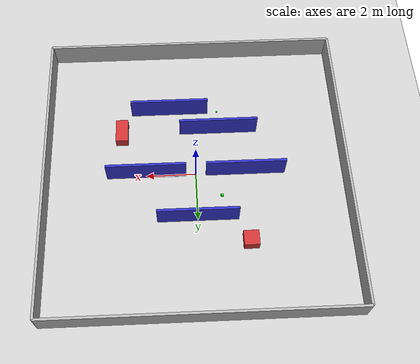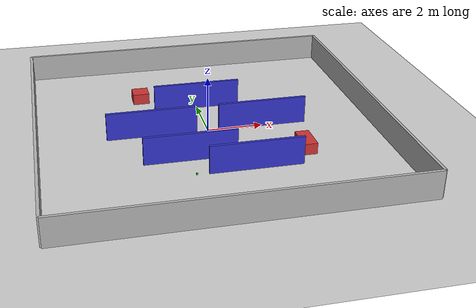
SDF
<?xml version="1.0" ?>
<sdf version="1.8">
  <world name="complex_room">

    <physics name="1ms" type="ignored">
      <max_step_size>0.001</max_step_size>
      <real_time_factor>1.0</real_time_factor>
    </physics>

    <plugin filename="libignition-gazebo-physics-system.so"
            name="ignition::gazebo::systems::Physics"/>
    <plugin filename="libignition-gazebo-user-commands-system.so"
            name="ignition::gazebo::systems::UserCommands"/>
    <plugin filename="libignition-gazebo-scene-broadcaster-system.so"
            name="ignition::gazebo::systems::SceneBroadcaster"/>

    <scene>
      <ambient>0.8 0.8 0.8 1.0</ambient> <background>1.0 1.0 1.0 1.0</background> <shadows>true</shadows> <grid>true</grid>
    </scene>

    <light type="directional" name="sun">
      <pose>0 0 10 0 0 0</pose>
      <cast_shadows>true</cast_shadows>
      <diffuse>1.0 1.0 1.0 1</diffuse> <specular>0.5 0.5 0.5 1</specular> <attenuation>
        <range>1000</range>
        <constant>0.9</constant>
        <linear>0.01</linear>
        <quadratic>0.001</quadratic>
      </attenuation>
      <direction>-0.5 0.2 -0.9</direction>
    </light>

    <model name="ground_plane">
      <static>true</static>
      <link name="link">
        <collision name="collision">
          <geometry>
            <plane>
              <normal>0 0 1</normal>
              <size>50 50</size>
            </plane>
          </geometry>
          <surface>
            <friction>
              <ode>
                <mu>100</mu>
                <mu2>50</mu2>
              </ode>
            </friction>
          </surface>
        </collision>
        <visual name="visual">
          <geometry>
            <plane>
              <normal>0 0 1</normal>
              <size>50 50</size>
            </plane>
          </geometry>
          <material>
            <ambient>0.8 0.8 0.8 1</ambient>
            <diffuse>0.8 0.8 0.8 1</diffuse>
            <specular>0.8 0.8 0.8 1</specular>
          </material>
        </visual>
      </link>
    </model>

    <model name="wall_north">
      <static>true</static>
      <pose>0 6 0.5 0 0 0</pose>
      <link name="link">
        <collision name="collision"><geometry><box><size>12 0.1 1</size></box></geometry></collision>
        <visual name="visual"><geometry><box><size>12 0.1 1</size></box></geometry>
          <material><ambient>0.3 0.3 0.3 1</ambient><diffuse>0.7 0.7 0.7 1</diffuse></material>
        </visual>
      </link>
    </model>

    <model name="wall_south">
      <static>true</static>
      <pose>0 -6 0.5 0 0 0</pose>
      <link name="link">
        <collision name="collision"><geometry><box><size>12 0.1 1</size></box></geometry></collision>
        <visual name="visual"><geometry><box><size>12 0.1 1</size></box></geometry>
          <material><ambient>0.3 0.3 0.3 1</ambient><diffuse>0.7 0.7 0.7 1</diffuse></material>
        </visual>
      </link>
    </model>

    <model name="wall_east">
      <static>true</static>
      <pose>6 0 0.5 0 0 0</pose>
      <link name="link">
        <collision name="collision"><geometry><box><size>0.1 12 1</size></box></geometry></collision>
        <visual name="visual"><geometry><box><size>0.1 12 1</size></box></geometry>
          <material><ambient>0.3 0.3 0.3 1</ambient><diffuse>0.7 0.7 0.7 1</diffuse></material>
        </visual>
      </link>
    </model>

    <model name="wall_west">
      <static>true</static>
      <pose>-6 0 0.5 0 0 0</pose>
      <link name="link">
        <collision name="collision"><geometry><box><size>0.1 12 1</size></box></geometry></collision>
        <visual name="visual"><geometry><box><size>0.1 12 1</size></box></geometry>
          <material><ambient>0.3 0.3 0.3 1</ambient><diffuse>0.7 0.7 0.7 1</diffuse></material>
        </visual>
      </link>
    </model>

    <model name="inner_wall_left">
      <static>true</static>
      <pose>-2 0 0.5 0 0 0</pose>
      <link name="link">
        <collision name="collision"><geometry><box><size>3.2 0.1 1</size></box></geometry></collision>
        <visual name="visual"><geometry><box><size>3.2 0.1 1</size></box></geometry>
          <material><ambient>0.2 0.2 0.8 1</ambient><diffuse>0.2 0.2 0.8 1</diffuse></material> </visual>
      </link>
    </model>

    <model name="inner_wall_right">
      <static>true</static>
      <pose>2 0 0.5 0 0 0</pose>
      <link name="link">
        <collision name="collision"><geometry><box><size>3.2 0.1 1</size></box></geometry></collision>
        <visual name="visual"><geometry><box><size>3.2 0.1 1</size></box></geometry>
          <material><ambient>0.2 0.2 0.8 1</ambient><diffuse>0.2 0.2 0.8 1</diffuse></material>
        </visual>
      </link>
    </model>

    <model name="inner_wall_up">
      <static>true</static>
      <pose>0 2 0.5 0 0 0</pose>
      <link name="link">
        <collision name="collision"><geometry><box><size>3.2 0.1 1</size></box></geometry></collision>
        <visual name="visual"><geometry><box><size>3.2 0.1 1</size></box></geometry>
          <material><ambient>0.2 0.2 0.8 1</ambient><diffuse>0.2 0.2 0.8 1</diffuse></material>
        </visual>
      </link>
    </model>

    <model name="inner_wall_down1">
      <static>true</static>
      <pose>1 -3 0.5 0 0 0</pose>
      <link name="link">
        <collision name="collision"><geometry><box><size>3.2 0.1 1</size></box></geometry></collision>
        <visual name="visual"><geometry><box><size>3.2 0.1 1</size></box></geometry>
          <material><ambient>0.2 0.2 0.8 1</ambient><diffuse>0.2 0.2 0.8 1</diffuse></material>
        </visual>
      </link>
    </model>

    <model name="inner_wall_down2">
      <static>true</static>
      <pose>-1 -2 0.5 0 0 0</pose>
      <link name="link">
        <collision name="collision"><geometry><box><size>3.2 0.1 1</size></box></geometry></collision>
        <visual name="visual"><geometry><box><size>3.2 0.1 1</size></box></geometry>
          <material><ambient>0.2 0.2 0.8 1</ambient><diffuse>0.2 0.2 0.8 1</diffuse></material>
        </visual>
      </link>
    </model>

    <model name="obstacle_1">
      <static>true</static>
      <pose>-2 3 0.2 0 0 0</pose>
      <link name="link">
        <collision name="collision"><geometry><box><size>0.6 0.6 0.4</size></box></geometry></collision>
        <visual name="visual"><geometry><box><size>0.6 0.6 0.4</size></box></geometry>
          <material><ambient>0.8 0.2 0.2 1</ambient><diffuse>0.8 0.2 0.2 1</diffuse></material> </visual>
      </link>
    </model>

    <model name="obstacle_2">
      <static>true</static>
      <pose>3 -2 0.2 0 0 0</pose>
      <link name="link">
        <collision name="collision"><geometry><box><size>0.5 1.0 0.4</size></box></geometry></collision>
        <visual name="visual"><geometry><box><size>0.5 1.0 0.4</size></box></geometry>
          <material><ambient>0.8 0.2 0.2 1</ambient><diffuse>0.8 0.2 0.2 1</diffuse></material>
        </visual>
      </link>
    </model>

    <model name="cube_5cm">
      <static>false</static>
      <pose>-1 -3 0.025 0 0 0</pose>
      <link name="link">
        <inertial><mass>0.05</mass><inertia><ixx>0.00002</ixx><iyy>0.00002</iyy><izz>0.00002</izz></inertia></inertial>
        <collision name="collision"><geometry><box><size>0.05 0.05 0.05</size></box></geometry></collision>
        <visual name="visual"><geometry><box><size>0.05 0.05 0.05</size></box></geometry>
          <material><ambient>0 1 0 1</ambient><diffuse>0 1 0 1</diffuse></material> </visual>
      </link>
    </model>

    <model name="cube_10cm">
      <static>false</static>
      <pose>-1 1 0.05 0 0 0</pose>
      <link name="link">
        <inertial><mass>0.2</mass><inertia><ixx>0.0003</ixx><iyy>0.0003</iyy><izz>0.0003</izz></inertia></inertial>
        <collision name="collision"><geometry><box><size>0.1 0.1 0.1</size></box></geometry></collision>
        <visual name="visual"><geometry><box><size>0.1 0.1 0.1</size></box></geometry>
          <material><ambient>0 1 0 1</ambient><diffuse>0 1 0 1</diffuse></material>
        </visual>
      </link>
    </model>

  </world>
</sdf>
